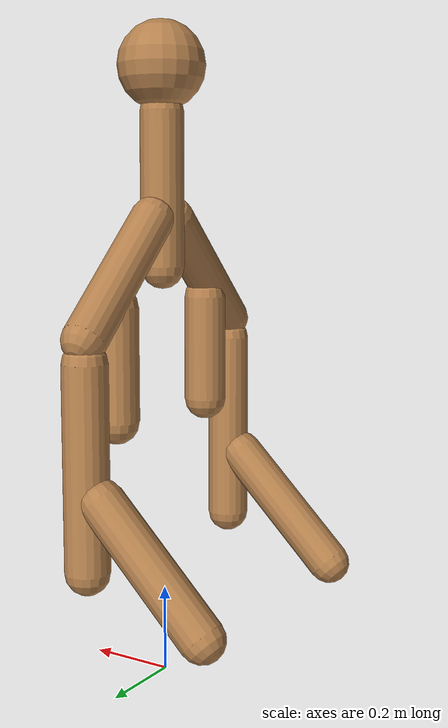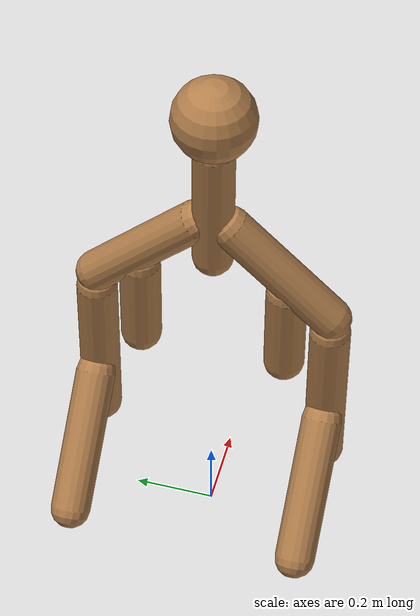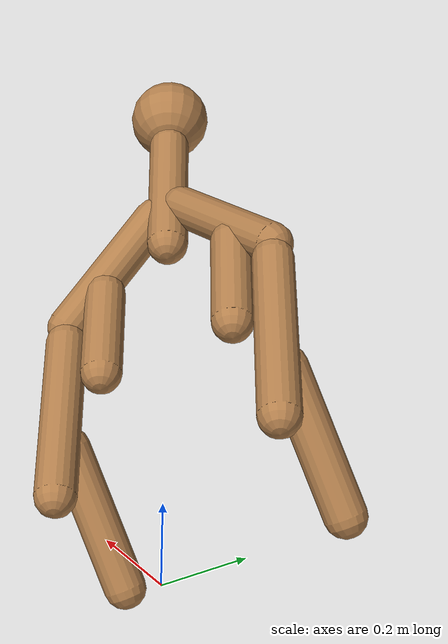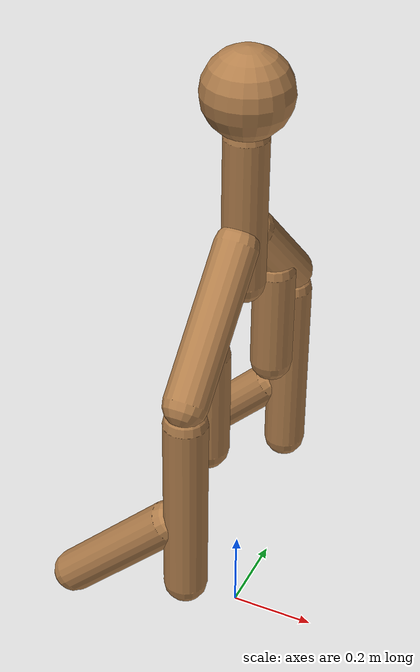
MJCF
<?xml version='1.0' encoding='UTF-8'?>
<!-- Universal Animal Template: unimal -->
<mujoco model="unimal">
  <compiler angle="degree"/>
  <size njmax="2000" nconmax="500"/>
  <option timestep=".005">
    <flag filterparent="disable"/>
  </option>
  <!-- Common defaults to make search space tractable -->
  <default>
    <!-- Define motor defaults -->
    <motor ctrlrange="-1 1" ctrllimited="true"/>
    <!-- Define joint defaults -->
    <default class="normal_joint">
      <joint type="hinge" damping="1" stiffness="1" armature="1" limited="true" range="-120 120" solimplimit="0 0.99 0.01"/>
    </default>
    <default class="walker_joint">
      <joint type="hinge" damping="0.2" stiffness="1" armature=".01" limited="true" range="-120 120" solimplimit="0 0.99 0.01"/>
    </default>
    <default class="stiff_joint">
      <joint type="hinge" damping="5" stiffness="10" armature=".01" limited="true" solimplimit="0 0.99 0.01"/>
    </default>
    <default class="free">
      <joint limited="false" damping="0" armature="0" stiffness="0"/>
    </default>
    <default class="growth_site">
      <site size="1e-6 1e-6 1e-6"/>
    </default>
    <default class="torso_growth_site">
      <site size="1e-6 1e-6 1e-6"/>
    </default>
    <default class="mirror_growth_site">
      <site size="1e-6 1e-6 1e-6"/>
    </default>
    <default class="btm_pos_site">
      <site size="1e-6 1e-6 1e-6"/>
    </default>
    <default class="box_face_site">
      <site size="1e-6 1e-6 1e-6"/>
    </default>
    <default class="imu_vel">
      <site type="box" size="0.05" rgba="1 0 0 0"/>
    </default>
    <default class="touch_site">
      <site group="3" rgba="0 0 1 .3"/>
    </default>
    <default class="food_site">
      <site material="food" size="0.15"/>
    </default>
    <!-- Define geom defaults -->
    <geom type="capsule" condim="3" friction="0.7 0.1 0.1" material="self"/>
  </default>
  <worldbody>
    <light diffuse="1 1 1" directional="true" exponent="1" pos="0 0 8" specular="0.1 0.1 0.1" dir="0 0 -1"/>
    <!-- Programatically generated xml goes here -->
    <body name="torso/0" pos="0 0 1.41">
      <joint name="root" type="free" class="free"/>
      <site name="root" class="imu_vel"/>
      <geom name="torso/0" type="sphere" size="0.1" condim="3" density="600"/>
      <camera name="side" pos="0 -7 2" xyaxes="1 0 0 0 1 2" mode="trackcom"/>
      <site name="torso/0" class="growth_site" pos="0 0 0"/>
      <site name="torso/btm_pos/0" class="btm_pos_site" pos="0 0 -0.1"/>
      <site name="torso/touch/0" class="touch_site" size="0.11"/>
      <site name="torso/vertical/0" class="torso_growth_site" pos="0 0 -0.1"/>
      <body name="limb/0" pos="0.0 0.0 -0.1">
        <joint name="limby/0" type="hinge" class="normal_joint" range="-30 30" pos="0.0 0.0 0.05" axis="0.0 1.0 0.0"/>
        <geom name="limb/0" type="capsule" fromto="0.0 0.0 0.0 0.0 0.0 -0.35" size="0.05" density="800"/>
        <site name="limb/mid/0" class="growth_site" pos="0.0 0.0 -0.2"/>
        <site name="limb/btm/0" class="growth_site" pos="0.0 0.0 -0.35"/>
        <site name="limb/btm_pos/0" class="btm_pos_site" pos="0.0 0.0 -0.35"/>
        <site name="limb/touch/0" class="touch_site" size="0.060000000000000005" fromto="0.0 0.0 0.0 0.0 0.0 -0.35" type="capsule"/>
        <body name="limb/8" pos="0.0 0.04 -0.24">
          <joint name="limbx/8" type="hinge" class="normal_joint" range="0 30" pos="0.0 -0.04 0.04" axis="1.0 0.0 0.0"/>
          <joint name="limby/8" type="hinge" class="normal_joint" range="-30 0" pos="0.0 -0.04 0.04" axis="0.0 0.7071 0.7071"/>
          <geom name="limb/8" type="capsule" fromto="0.0 0.0 0.0 0.0 0.25 -0.25" size="0.05" density="800"/>
          <site name="limb/mid/8" class="mirror_growth_site" pos="0.0 0.14 -0.14"/>
          <site name="limb/btm/8" class="mirror_growth_site" pos="0.0 0.25 -0.25"/>
          <site name="limb/btm_pos/8" class="btm_pos_site" pos="0.0 0.25 -0.25"/>
          <site name="limb/touch/8" class="touch_site" size="0.060000000000000005" fromto="0.0 0.0 0.0 0.0 0.25 -0.25" type="capsule"/>
          <body name="limb/13" pos="0.0 0.25 -0.3">
            <joint name="limbx/13" type="hinge" class="normal_joint" range="-60 0" pos="0.0 0.0 0.05" axis="1.0 0.0 0.0"/>
            <joint name="limby/13" type="hinge" class="normal_joint" range="-45 45" pos="0.0 0.0 0.05" axis="0.0 1.0 0.0"/>
            <geom name="limb/13" type="capsule" fromto="0.0 0.0 0.0 0.0 0.0 -0.45" size="0.05" density="800"/>
            <site name="limb/mid/13" class="mirror_growth_site" pos="0.0 0.0 -0.25"/>
            <site name="limb/btm/13" class="mirror_growth_site" pos="0.0 0.0 -0.45"/>
            <site name="limb/btm_pos/13" class="btm_pos_site" pos="0.0 0.0 -0.5"/>
            <site name="limb/touch/13" class="touch_site" size="0.060000000000000005" fromto="0.0 0.0 0.0 0.0 0.0 -0.45" type="capsule"/>
            <body name="limb/17" pos="-0.04 0.0 -0.29">
              <joint name="limbx/17" type="hinge" class="normal_joint" range="0 60" pos="0.04 0.0 0.04" axis="0.7071 0.0 -0.7071"/>
              <joint name="limby/17" type="hinge" class="normal_joint" range="0 45" pos="0.04 0.0 0.04" axis="0.0 1.0 0.0"/>
              <geom name="limb/17" type="capsule" fromto="0.0 0.0 0.0 -0.25 0.0 -0.25" size="0.05" density="800"/>
              <site name="limb/mid/17" class="mirror_growth_site" pos="-0.14 0.0 -0.14"/>
              <site name="limb/btm/17" class="mirror_growth_site" pos="-0.25 0.0 -0.25"/>
              <site name="limb/btm_pos/17" class="btm_pos_site" pos="-0.28 0.0 -0.28"/>
              <site name="limb/touch/17" class="touch_site" size="0.060000000000000005" fromto="0.0 0.0 0.0 -0.25 0.0 -0.25" type="capsule"/>
            </body>
          </body>
          <body name="limb/15" pos="0.0 0.14 -0.19">
            <joint name="limbx/15" type="hinge" class="normal_joint" range="-30 0" pos="0.0 0.0 0.05" axis="1.0 0.0 0.0"/>
            <geom name="limb/15" type="capsule" fromto="0.0 0.0 0.0 0.0 0.0 -0.25" size="0.05" density="800"/>
            <site name="limb/mid/15" class="mirror_growth_site" pos="0.0 0.0 -0.15"/>
            <site name="limb/btm/15" class="mirror_growth_site" pos="0.0 0.0 -0.25"/>
            <site name="limb/btm_pos/15" class="btm_pos_site" pos="0.0 0.0 -0.25"/>
            <site name="limb/touch/15" class="touch_site" size="0.060000000000000005" fromto="0.0 0.0 0.0 0.0 0.0 -0.25" type="capsule"/>
          </body>
        </body>
        <body name="limb/9" pos="0.0 -0.04 -0.24">
          <joint name="limbx/9" type="hinge" class="normal_joint" range="0 30" pos="0.0 0.04 0.04" axis="1.0 0.0 -0.0"/>
          <joint name="limby/9" type="hinge" class="normal_joint" range="-30 0" pos="0.0 0.04 0.04" axis="-0.0 0.7071 -0.7071"/>
          <geom name="limb/9" type="capsule" fromto="0.0 0.0 0.0 0.0 -0.25 -0.25" size="0.05" density="800"/>
          <site name="limb/mid/9" class="mirror_growth_site" pos="0.0 -0.14 -0.14"/>
          <site name="limb/btm/9" class="mirror_growth_site" pos="0.0 -0.25 -0.25"/>
          <site name="limb/btm_pos/9" class="btm_pos_site" pos="0.0 -0.25 -0.25"/>
          <site name="limb/touch/9" class="touch_site" size="0.060000000000000005" fromto="0.0 0.0 0.0 0.0 -0.25 -0.25" type="capsule"/>
          <body name="limb/14" pos="0.0 -0.25 -0.3">
            <joint name="limbx/14" type="hinge" class="normal_joint" range="-60 0" pos="0.0 0.0 0.05" axis="1.0 0.0 0.0"/>
            <joint name="limby/14" type="hinge" class="normal_joint" range="-45 45" pos="0.0 0.0 0.05" axis="0.0 1.0 0.0"/>
            <geom name="limb/14" type="capsule" fromto="0.0 0.0 0.0 0.0 0.0 -0.45" size="0.05" density="800"/>
            <site name="limb/mid/14" class="mirror_growth_site" pos="0.0 0.0 -0.25"/>
            <site name="limb/btm/14" class="mirror_growth_site" pos="0.0 0.0 -0.45"/>
            <site name="limb/btm_pos/14" class="btm_pos_site" pos="0.0 0.0 -0.5"/>
            <site name="limb/touch/14" class="touch_site" size="0.060000000000000005" fromto="0.0 0.0 0.0 0.0 0.0 -0.45" type="capsule"/>
            <body name="limb/18" pos="-0.04 0.0 -0.29">
              <joint name="limbx/18" type="hinge" class="normal_joint" range="0 60" pos="0.04 0.0 0.04" axis="0.7071 0.0 -0.7071"/>
              <joint name="limby/18" type="hinge" class="normal_joint" range="0 45" pos="0.04 0.0 0.04" axis="0.0 1.0 0.0"/>
              <geom name="limb/18" type="capsule" fromto="0.0 0.0 0.0 -0.25 0.0 -0.25" size="0.05" density="800"/>
              <site name="limb/mid/18" class="mirror_growth_site" pos="-0.14 0.0 -0.14"/>
              <site name="limb/btm/18" class="mirror_growth_site" pos="-0.25 0.0 -0.25"/>
              <site name="limb/btm_pos/18" class="btm_pos_site" pos="-0.28 0.0 -0.28"/>
              <site name="limb/touch/18" class="touch_site" size="0.060000000000000005" fromto="0.0 0.0 0.0 -0.25 0.0 -0.25" type="capsule"/>
            </body>
          </body>
          <body name="limb/16" pos="0.0 -0.14 -0.19">
            <joint name="limbx/16" type="hinge" class="normal_joint" range="-30 0" pos="0.0 0.0 0.05" axis="1.0 0.0 0.0"/>
            <geom name="limb/16" type="capsule" fromto="0.0 0.0 0.0 0.0 0.0 -0.25" size="0.05" density="800"/>
            <site name="limb/mid/16" class="mirror_growth_site" pos="0.0 0.0 -0.15"/>
            <site name="limb/btm/16" class="mirror_growth_site" pos="0.0 0.0 -0.25"/>
            <site name="limb/btm_pos/16" class="btm_pos_site" pos="0.0 0.0 -0.25"/>
            <site name="limb/touch/16" class="touch_site" size="0.060000000000000005" fromto="0.0 0.0 0.0 0.0 0.0 -0.25" type="capsule"/>
          </body>
        </body>
      </body>
    </body>
  </worldbody>
  <actuator>
    <motor joint="limby/0" gear="300" name="limby/0"/>
    <motor joint="limbx/8" gear="250" name="limbx/8"/>
    <motor joint="limby/8" gear="200" name="limby/8"/>
    <motor joint="limbx/13" gear="200" name="limbx/13"/>
    <motor joint="limby/13" gear="150" name="limby/13"/>
    <motor joint="limbx/17" gear="250" name="limbx/17"/>
    <motor joint="limby/17" gear="300" name="limby/17"/>
    <motor joint="limbx/15" gear="150" name="limbx/15"/>
    <motor joint="limbx/9" gear="250" name="limbx/9"/>
    <motor joint="limby/9" gear="200" name="limby/9"/>
    <motor joint="limbx/14" gear="200" name="limbx/14"/>
    <motor joint="limby/14" gear="150" name="limby/14"/>
    <motor joint="limbx/18" gear="250" name="limbx/18"/>
    <motor joint="limby/18" gear="300" name="limby/18"/>
    <motor joint="limbx/16" gear="150" name="limbx/16"/>
  </actuator>
  <sensor>
    <accelerometer name="torso_accel" site="root"/>
    <gyro name="torso_gyro" site="root"/>
    <velocimeter name="torso_vel" site="root"/>
    <subtreeangmom name="unimal_am" body="torso/0"/>
    <touch name="torso/0" site="torso/touch/0"/>
    <touch name="limb/0" site="limb/touch/0"/>
    <touch name="limb/8" site="limb/touch/8"/>
    <touch name="limb/13" site="limb/touch/13"/>
    <touch name="limb/17" site="limb/touch/17"/>
    <touch name="limb/15" site="limb/touch/15"/>
    <touch name="limb/9" site="limb/touch/9"/>
    <touch name="limb/14" site="limb/touch/14"/>
    <touch name="limb/18" site="limb/touch/18"/>
    <touch name="limb/16" site="limb/touch/16"/>
  </sensor>
  <!-- Add hfield assets -->
  <asset/>
  <!-- List of contacts to exclude -->
  <contact>
    <exclude name="limb/8:limb/9" body1="limb/8" body2="limb/9"/>
  </contact>
  <!-- Define material, texture etc -->
  <asset>
    <material name="grid" texture="grid" texrepeat="1 1" texuniform="true" reflectance="0.1"/>
    <material name="hfield" texture="hfield" texrepeat="1 1" texuniform="true" reflectance="0.1"/>
    <material name="wall" texture="wall" texrepeat="1 1" texuniform="true" reflectance=".5"/>
    <material name="platform" texture="platform" texrepeat="1 1" texuniform="true" reflectance=".5"/>
    <material name="boundary" texture="boundary" texrepeat="1 1" texuniform="true" reflectance=".5"/>
    <material name="jump" texture="jump" texrepeat="1 1" texuniform="true" reflectance=".5"/>
    <material name="goal" rgba="1 0 0 1"/>
    <material name="food" rgba="0 0 1 1" emission="1"/>
    <material name="init_position" rgba="0 1 0 0.7"/>
    <material name="self" rgba=".7 .5 .3 1"/>
    <material name="self_invisible" rgba=".7 .5 .3 0"/>
    <material name="self_default" rgba=".7 .5 .3 1"/>
    <material name="self_highlight" rgba="0 .5 .3 1"/>
    <material name="effector" rgba=".7 .4 .2 1"/>
    <material name="effector_default" rgba=".7 .4 .2 1"/>
    <material name="effector_highlight" rgba="0 .5 .3 1"/>
    <material name="decoration" rgba=".3 .5 .7 1"/>
    <material name="eye" rgba="0 .2 1 1"/>
    <material name="target" rgba=".6 .3 .3 1"/>
    <material name="target_default" rgba=".6 .3 .3 1"/>
    <material name="target_highlight" rgba=".6 .3 .3 .4"/>
    <material name="site" rgba=".5 .5 .5 .3"/>
    <material name="ball" texture="ball"/>
  </asset>
  <asset>
    <texture name="grid" type="2d" builtin="checker" rgb1="0.4 0.4 0.4" rgb2="0.4 0.4 0.4" width="300" height="300" mark="edge" markrgb="0.2 0.2 0.2"/>
    <texture name="hfield" type="2d" builtin="checker" rgb1="0.4 0.4 0.4" rgb2="0.4 0.4 0.4" width="300" height="300" mark="edge" markrgb="0.2 0.2 0.2"/>
    <texture name="wall" type="2d" builtin="flat" rgb1="0.9 0.7 0" rgb2="0.9 0.7 0" width="300" height="300"/>
    <texture name="platform" type="2d" builtin="flat" rgb1="0.3 0 0.8" rgb2="0.3 0 0.8" width="300" height="300"/>
    <texture name="boundary" type="2d" builtin="flat" rgb1="0.3 0.3 0.3" rgb2="0.3 0.3 0.3" width="300" height="300"/>
    <texture name="jump" type="2d" builtin="flat" rgb1="0.3 0.3 0.3" rgb2="0.3 0.3 0.3" width="300" height="300"/>
    <texture name="skybox" type="skybox" builtin="gradient" rgb1="1 1 1" rgb2="0.6 0.6 0.6" width="800" height="800"/>
    <texture name="ball" builtin="checker" mark="cross" width="151" height="151" rgb1="0.1 0.1 0.1" rgb2="0.9 0.9 0.9" markrgb="1 1 1"/>
  </asset>
  <visual>
    <headlight ambient="0.6 0.6 0.6" diffuse="0.3 0.3 0.3" specular="0 0 0"/>
    <map znear=".01" shadowclip="0.5"/>
    <quality shadowsize="16384"/>
  </visual>
</mujoco>
